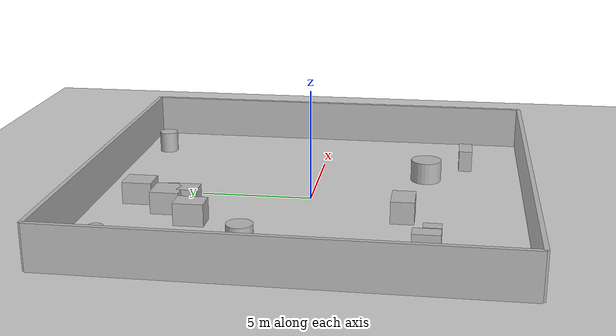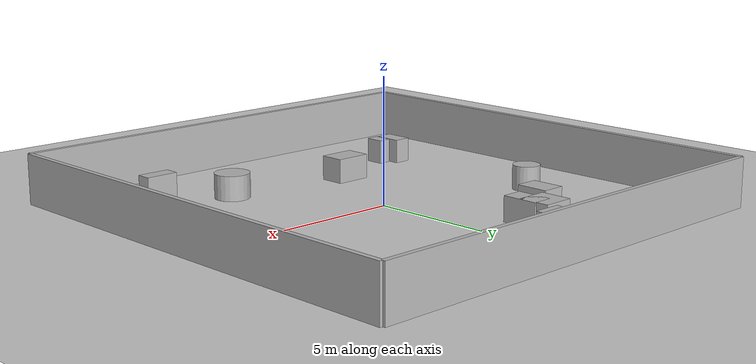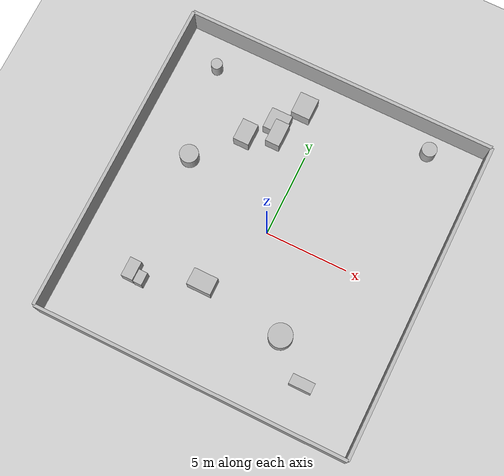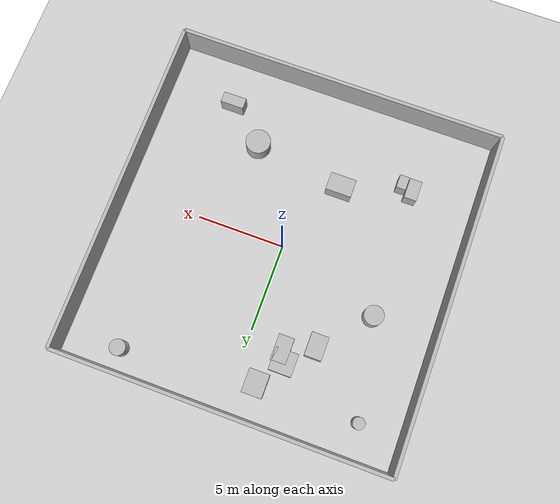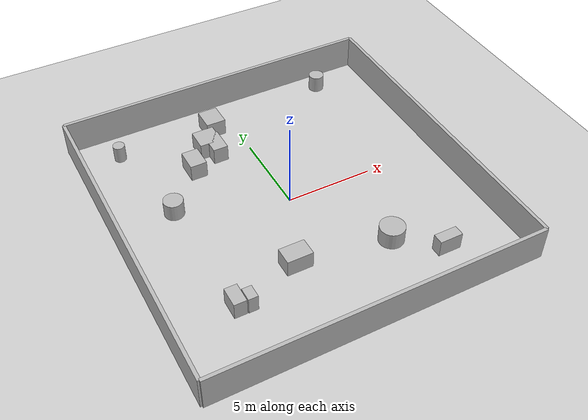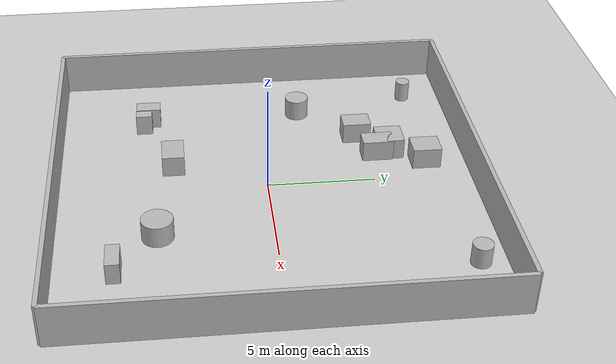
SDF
<?xml version="1.0"?>
<sdf version="1.6">
  <world name="env_86">

    <include><uri>model://ground_plane</uri></include>
    <include><uri>model://sun</uri></include>

    <!-- WALLS -->
    <model name="wall_north"><static>true</static><pose>0 9.620941634160712 1 0 0 0</pose>
      <link name="link"><collision name="collision">
        <geometry><box><size>18.942874837283547 0.2 2</size></box></geometry>
      </collision><visual name="visual">
        <geometry><box><size>18.942874837283547 0.2 2</size></box></geometry>
      </visual></link>
    </model>

    <model name="wall_south"><static>true</static><pose>0 -9.620941634160712 1 0 0 0</pose>
      <link name="link"><collision name="collision">
        <geometry><box><size>18.942874837283547 0.2 2</size></box></geometry>
      </collision><visual name="visual">
        <geometry><box><size>18.942874837283547 0.2 2</size></box></geometry>
      </visual></link>
    </model>

    <model name="wall_east"><static>true</static><pose>9.471437418641774 0 1 0 0 1.57</pose>
      <link name="link"><collision name="collision">
        <geometry><box><size>19.241883268321423 0.2 2</size></box></geometry>
      </collision><visual name="visual">
        <geometry><box><size>19.241883268321423 0.2 2</size></box></geometry>
      </visual></link>
    </model>

    <model name="wall_west"><static>true</static><pose>-9.471437418641774 0 1 0 0 1.57</pose>
      <link name="link"><collision name="collision">
        <geometry><box><size>19.241883268321423 0.2 2</size></box></geometry>
      </collision><visual name="visual">
        <geometry><box><size>19.241883268321423 0.2 2</size></box></geometry>
      </visual></link>
    </model>

    <!-- SENSOR -->

    <model name="lidar_sensor">
      <static>true</static>
      <pose>-7.937806871906593 -2.491731750190806 0.4 0 0 0</pose>
      <link name="link">
        <sensor name="lidar" type="ray">
          <pose>0 0 0 0 0 0</pose>
          <visualize>true</visualize>
          <always_on>true</always_on>
          <update_rate>10</update_rate>
          <ray>
            <scan><horizontal>
              <samples>90</samples>
              <resolution>1</resolution>
              <min_angle>-3.14159</min_angle>
              <max_angle>3.14159</max_angle>
            </horizontal></scan>
            <range><min>0.15</min><max>20.0</max><resolution>0.01</resolution></range>
          </ray>
          <plugin name="lidar_plugin" filename="liblidar_plugin.so"/>
        </sensor>
      </link>
    </model>

    <!-- OBSTACLES -->

    <model name="obstacle_0">
      <static>true</static>
      <pose>-5.1470818932694655 -5.584255833814049 0.5 0 0 0</pose>
      <link name="link">
        <collision name="collision">
          <geometry><box><size>0.54 0.77 1.0</size></box></geometry>
        </collision>
        <visual name="visual">
          <geometry><box><size>0.54 0.77 1.0</size></box></geometry>
        </visual>
      </link>
    </model>

    <model name="obstacle_1">
      <static>true</static>
      <pose>-1.9294182191505218 -4.264146022006787 0.5 0 0 0</pose>
      <link name="link">
        <collision name="collision">
          <geometry><box><size>1.48 1.03 1.0</size></box></geometry>
        </collision>
        <visual name="visual">
          <geometry><box><size>1.48 1.03 1.0</size></box></geometry>
        </visual>
      </link>
    </model>

    <model name="obstacle_2">
      <static>true</static>
      <pose>5.519905903080858 -6.929785067476923 0.5 0 0 0</pose>
      <link name="link">
        <collision name="collision">
          <geometry><box><size>1.34 0.62 1.0</size></box></geometry>
        </collision>
        <visual name="visual">
          <geometry><box><size>1.34 0.62 1.0</size></box></geometry>
        </visual>
      </link>
    </model>

    <model name="obstacle_3">
      <static>true</static>
      <pose>-7.034057022672689 7.662877673624756 0.5 0 0 0</pose>
      <link name="link">
        <collision name="collision">
          <geometry><cylinder><radius>0.34</radius><length>1.0</length></cylinder></geometry>
        </collision>
        <visual name="visual">
          <geometry><cylinder><radius>0.34</radius><length>1.0</length></cylinder></geometry>
        </visual>
      </link>
    </model>

    <model name="obstacle_4">
      <static>true</static>
      <pose>-3.643979924166576 4.655855014336964 0.5 0 0 0</pose>
      <link name="link">
        <collision name="collision">
          <geometry><box><size>0.97 1.33 1.0</size></box></geometry>
        </collision>
        <visual name="visual">
          <geometry><box><size>0.97 1.33 1.0</size></box></geometry>
        </visual>
      </link>
    </model>

    <model name="obstacle_5">
      <static>true</static>
      <pose>-5.988714991072245 2.044523107204194 0.5 0 0 0</pose>
      <link name="link">
        <collision name="collision">
          <geometry><cylinder><radius>0.56</radius><length>1.0</length></cylinder></geometry>
        </collision>
        <visual name="visual">
          <geometry><cylinder><radius>0.56</radius><length>1.0</length></cylinder></geometry>
        </visual>
      </link>
    </model>

    <model name="obstacle_6">
      <static>true</static>
      <pose>-1.9725820400807317 5.421961600595864 0.5 0 0 0</pose>
      <link name="link">
        <collision name="collision">
          <geometry><box><size>0.87 1.46 1.0</size></box></geometry>
        </collision>
        <visual name="visual">
          <geometry><box><size>0.87 1.46 1.0</size></box></geometry>
        </visual>
      </link>
    </model>

    <model name="obstacle_7">
      <static>true</static>
      <pose>-2.2582274491947656 6.0298603356440506 0.5 0 0 0</pose>
      <link name="link">
        <collision name="collision">
          <geometry><box><size>1.3 1.28 1.0</size></box></geometry>
        </collision>
        <visual name="visual">
          <geometry><box><size>1.3 1.28 1.0</size></box></geometry>
        </visual>
      </link>
    </model>

    <model name="obstacle_8">
      <static>true</static>
      <pose>-1.2543809089312097 7.585447683029361 0.5 0 0 0</pose>
      <link name="link">
        <collision name="collision">
          <geometry><box><size>1.15 1.34 1.0</size></box></geometry>
        </collision>
        <visual name="visual">
          <geometry><box><size>1.15 1.34 1.0</size></box></geometry>
        </visual>
      </link>
    </model>

    <model name="obstacle_9">
      <static>true</static>
      <pose>3.321052685491429 -5.074362208699435 0.5 0 0 0</pose>
      <link name="link">
        <collision name="collision">
          <geometry><cylinder><radius>0.71</radius><length>1.0</length></cylinder></geometry>
        </collision>
        <visual name="visual">
          <geometry><cylinder><radius>0.71</radius><length>1.0</length></cylinder></geometry>
        </visual>
      </link>
    </model>

    <model name="obstacle_10">
      <static>true</static>
      <pose>6.313867010724671 8.340559399360998 0.5 0 0 0</pose>
      <link name="link">
        <collision name="collision">
          <geometry><cylinder><radius>0.45</radius><length>1.0</length></cylinder></geometry>
        </collision>
        <visual name="visual">
          <geometry><cylinder><radius>0.45</radius><length>1.0</length></cylinder></geometry>
        </visual>
      </link>
    </model>

    <model name="obstacle_11">
      <static>true</static>
      <pose>-5.817804738022289 -5.3686443321464585 0.5 0 0 0</pose>
      <link name="link">
        <collision name="collision">
          <geometry><box><size>0.71 1.16 1.0</size></box></geometry>
        </collision>
        <visual name="visual">
          <geometry><box><size>0.71 1.16 1.0</size></box></geometry>
        </visual>
      </link>
    </model>

  </world>
</sdf>
